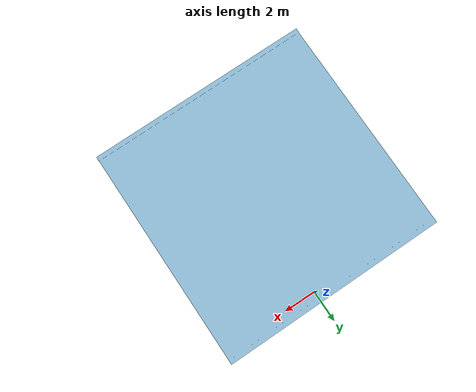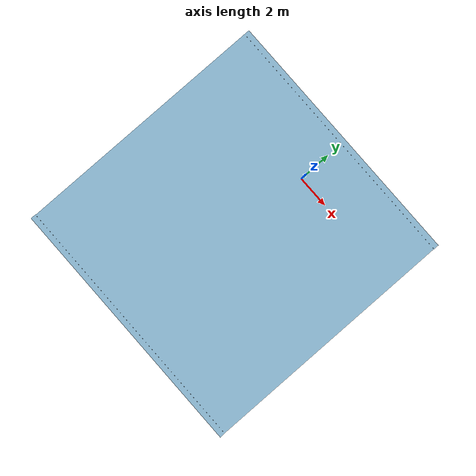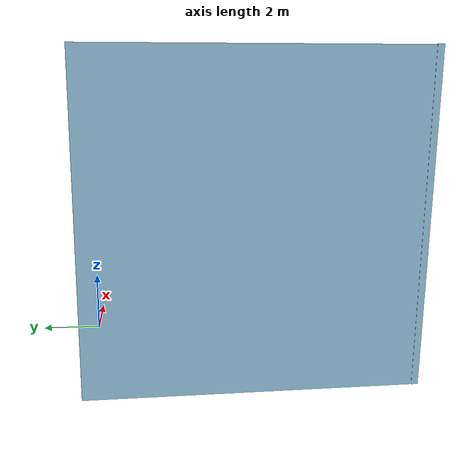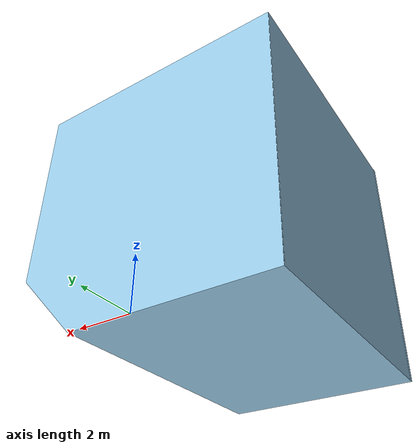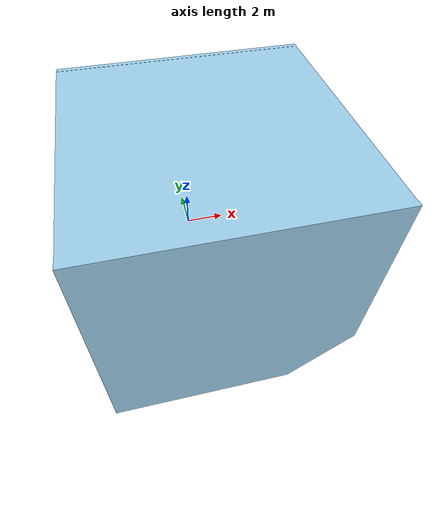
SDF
<?xml version="1.0"?>
<sdf version="1.6">
 <model name="cargo_hold_structure">
   <pose>0 0 0 0 0 0</pose>
   <static>true</static>
   <link name="link">
     <collision name="collision">
       <geometry>
         <mesh>
          <uri>model://cargo_hold_structure/meshes/small_tank_walls.dae</uri>
        </mesh>
       </geometry>
     </collision>
     <visual name="visual">
       <geometry>
         <mesh>
          <uri>model://cargo_hold_structure/meshes/small_tank_walls.dae</uri>
        </mesh>
       </geometry>
     </visual>
   </link>
 </model>
</sdf>
